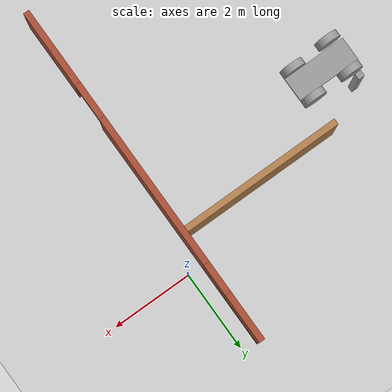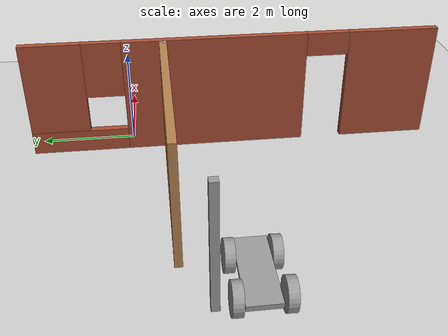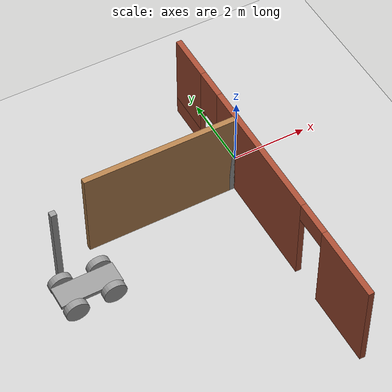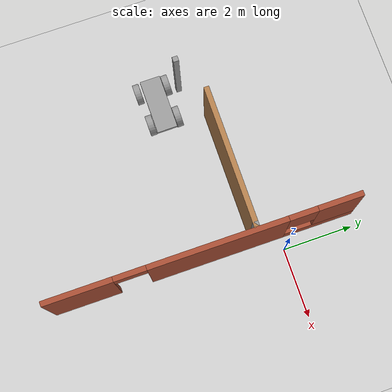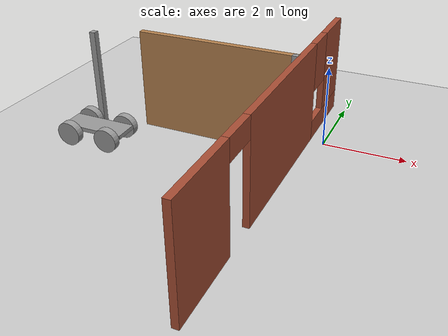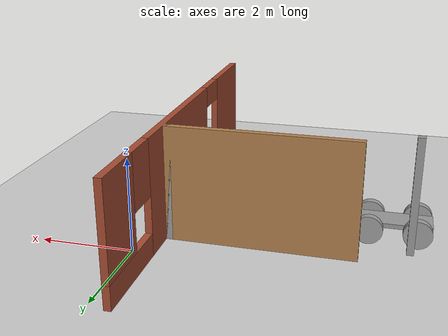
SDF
<sdf version="1.6">
 <world name="default">
  <model name="ground_plane">
   <static>1</static>
   <link name="link">
    <collision name="collision">
     <geometry><plane><normal>0 0 1</normal><size>100 100</size></plane></geometry>
     <surface><friction><ode><mu>100</mu><mu2>50</mu2></ode></friction></surface>
    </collision>
    <visual name="visual">
     <cast_shadows>0</cast_shadows>
     <geometry><plane><normal>0 0 1</normal><size>100 100</size></plane></geometry>
     <material>
      <script><uri>file://media/materials/scripts/gazebo.material</uri><name>Gazebo/Grey</name></script>
     </material>
    </visual>
   </link>
  </model>
  <model name="Building">
   <link name="Wall_19">
    <pose>3.69833 -0.184696 0 0 -0 0</pose>
    <visual name="Wall_19_Visual">
     <pose>0 0 1.25 0 -0 0</pose>
     <geometry><box><size>4 0.15 2.5</size></box></geometry>
     <material>
      <script><uri>file://media/materials/scripts/gazebo.material</uri><name>Gazebo/Wood</name></script>
      <ambient>1 1 1 1</ambient>
      <shader type="pixel"/>
      <diffuse>1 1 1 1</diffuse>
      <specular>0.2 0.2 0.2 1</specular>
      <emissive>0 0 0 1</emissive>
     </material>
     <meta><layer>0</layer></meta>
    </visual>
    <collision name="Wall_19_Collision">
     <pose>0 0 1.25 0 -0 0</pose>
     <geometry><box><size>4 0.15 2.5</size></box></geometry>
     <surface>
      <friction>
       <ode><mu>1</mu><mu2>1</mu2><fdir1>0 0 0</fdir1><slip1>0</slip1><slip2>0</slip2></ode>
       <torsional>
        <coefficient>1</coefficient>
        <patch_radius>0</patch_radius>
        <surface_radius>0</surface_radius>
        <use_patch_radius>1</use_patch_radius>
        <ode><slip>0</slip></ode>
       </torsional>
      </friction>
      <bounce><restitution_coefficient>0</restitution_coefficient><threshold>1e+06</threshold></bounce>
      <contact>
       <collide_without_contact>0</collide_without_contact>
       <collide_without_contact_bitmask>1</collide_without_contact_bitmask>
       <collide_bitmask>1</collide_bitmask>
       <ode>
        <soft_cfm>0</soft_cfm>
        <soft_erp>0.2</soft_erp>
        <kp>1e+13</kp>
        <kd>1</kd>
        <max_vel>0.01</max_vel>
        <min_depth>0</min_depth>
       </ode>
       <bullet>
        <split_impulse>1</split_impulse>
        <split_impulse_penetration_threshold>-0.01</split_impulse_penetration_threshold>
        <soft_cfm>0</soft_cfm>
        <soft_erp>0.2</soft_erp>
        <kp>1e+13</kp>
        <kd>1</kd>
       </bullet>
      </contact>
     </surface>
    </collision>
   </link>
   <link name="Wall_2">
    <pose>5.76056 -1.65 0 0 -0 1.5708</pose>
    <visual name="Wall_2_Visual_0">
     <pose>-3.41528 0 1.25 0 -0 0</pose>
     <geometry><box><size>1.91943 0.15 2.5</size></box></geometry>
     <material>
      <script><uri>file://media/materials/scripts/gazebo.material</uri><name>Gazebo/Bricks</name></script>
      <ambient>1 1 1 1</ambient>
      <shader type="pixel"/>
      <diffuse>1 1 1 1</diffuse>
      <specular>0.2 0.2 0.2 1</specular>
      <emissive>0 0 0 1</emissive>
     </material>
     <meta><layer>0</layer></meta>
    </visual>
    <visual name="Wall_2_Visual_1">
     <pose>0.38347 0 1.25 0 -0 0</pose>
     <geometry><box><size>3.87808 0.15 2.5</size></box></geometry>
     <material>
      <script><uri>file://media/materials/scripts/gazebo.material</uri><name>Gazebo/Bricks</name></script>
      <ambient>1 1 1 1</ambient>
      <shader type="pixel"/>
      <diffuse>1 1 1 1</diffuse>
      <specular>0.2 0.2 0.2 1</specular>
      <emissive>0 0 0 1</emissive>
     </material>
     <meta><layer>0</layer></meta>
    </visual>
    <visual name="Wall_2_Visual_2">
     <pose>3.34875 0 0.25 0 -0 0</pose>
     <geometry><box><size>2.05249 0.15 0.5</size></box></geometry>
     <material>
      <script><uri>file://media/materials/scripts/gazebo.material</uri><name>Gazebo/Bricks</name></script>
      <ambient>1 1 1 1</ambient>
      <shader type="pixel"/>
      <diffuse>1 1 1 1</diffuse>
      <specular>0.2 0.2 0.2 1</specular>
      <emissive>0 0 0 1</emissive>
     </material>
     <meta><layer>0</layer></meta>
    </visual>
    <visual name="Wall_2_Visual_3">
     <pose>3.74875 0 1.5 0 -0 0</pose>
     <geometry><box><size>1.25249 0.15 2</size></box></geometry>
     <material>
      <script><uri>file://media/materials/scripts/gazebo.material</uri><name>Gazebo/Bricks</name></script>
      <ambient>1 1 1 1</ambient>
      <shader type="pixel"/>
      <diffuse>1 1 1 1</diffuse>
      <specular>0.2 0.2 0.2 1</specular>
      <emissive>0 0 0 1</emissive>
     </material>
     <meta><layer>0</layer></meta>
    </visual>
    <visual name="Wall_2_Visual_4">
     <pose>2.72251 0 1.9 0 -0 0</pose>
     <geometry><box><size>0.8 0.15 1.2</size></box></geometry>
     <material>
      <script><uri>file://media/materials/scripts/gazebo.material</uri><name>Gazebo/Bricks</name></script>
      <ambient>1 1 1 1</ambient>
      <shader type="pixel"/>
      <diffuse>1 1 1 1</diffuse>
      <specular>0.2 0.2 0.2 1</specular>
      <emissive>0 0 0 1</emissive>
     </material>
     <meta><layer>0</layer></meta>
    </visual>
    <visual name="Wall_2_Visual_5">
     <pose>-2.00557 0 2.25 0 -0 0</pose>
     <geometry><box><size>0.9 0.15 0.5</size></box></geometry>
     <material>
      <script><uri>file://media/materials/scripts/gazebo.material</uri><name>Gazebo/Bricks</name></script>
      <ambient>1 1 1 1</ambient>
      <shader type="pixel"/>
      <diffuse>1 1 1 1</diffuse>
      <specular>0.2 0.2 0.2 1</specular>
      <emissive>0 0 0 1</emissive>
     </material>
     <meta><layer>0</layer></meta>
    </visual>
    <collision name="Wall_2_Collision_0">
     <pose>-3.41528 0 1.25 0 -0 0</pose>
     <geometry><box><size>1.91943 0.15 2.5</size></box></geometry>
     <surface>
      <friction>
       <ode><mu>1</mu><mu2>1</mu2><fdir1>0 0 0</fdir1><slip1>0</slip1><slip2>0</slip2></ode>
       <torsional>
        <coefficient>1</coefficient>
        <patch_radius>0</patch_radius>
        <surface_radius>0</surface_radius>
        <use_patch_radius>1</use_patch_radius>
        <ode><slip>0</slip></ode>
       </torsional>
      </friction>
      <bounce><restitution_coefficient>0</restitution_coefficient><threshold>1e+06</threshold></bounce>
      <contact>
       <collide_without_contact>0</collide_without_contact>
       <collide_without_contact_bitmask>1</collide_without_contact_bitmask>
       <collide_bitmask>1</collide_bitmask>
       <ode>
        <soft_cfm>0</soft_cfm>
        <soft_erp>0.2</soft_erp>
        <kp>1e+13</kp>
        <kd>1</kd>
        <max_vel>0.01</max_vel>
        <min_depth>0</min_depth>
       </ode>
       <bullet>
        <split_impulse>1</split_impulse>
        <split_impulse_penetration_threshold>-0.01</split_impulse_penetration_threshold>
        <soft_cfm>0</soft_cfm>
        <soft_erp>0.2</soft_erp>
        <kp>1e+13</kp>
        <kd>1</kd>
       </bullet>
      </contact>
     </surface>
    </collision>
    <collision name="Wall_2_Collision_1">
     <pose>0.38347 0 1.25 0 -0 0</pose>
     <geometry><box><size>3.87808 0.15 2.5</size></box></geometry>
     <surface>
      <friction>
       <ode><mu>1</mu><mu2>1</mu2><fdir1>0 0 0</fdir1><slip1>0</slip1><slip2>0</slip2></ode>
       <torsional>
        <coefficient>1</coefficient>
        <patch_radius>0</patch_radius>
        <surface_radius>0</surface_radius>
        <use_patch_radius>1</use_patch_radius>
        <ode><slip>0</slip></ode>
       </torsional>
      </friction>
      <bounce><restitution_coefficient>0</restitution_coefficient><threshold>1e+06</threshold></bounce>
      <contact>
       <collide_without_contact>0</collide_without_contact>
       <collide_without_contact_bitmask>1</collide_without_contact_bitmask>
       <collide_bitmask>1</collide_bitmask>
       <ode>
        <soft_cfm>0</soft_cfm>
        <soft_erp>0.2</soft_erp>
        <kp>1e+13</kp>
        <kd>1</kd>
        <max_vel>0.01</max_vel>
        <min_depth>0</min_depth>
       </ode>
       <bullet>
        <split_impulse>1</split_impulse>
        <split_impulse_penetration_threshold>-0.01</split_impulse_penetration_threshold>
        <soft_cfm>0</soft_cfm>
        <soft_erp>0.2</soft_erp>
        <kp>1e+13</kp>
        <kd>1</kd>
       </bullet>
      </contact>
     </surface>
    </collision>
    <collision name="Wall_2_Collision_2">
     <pose>3.34875 0 0.25 0 -0 0</pose>
     <geometry><box><size>2.05249 0.15 0.5</size></box></geometry>
     <surface>
      <friction>
       <ode><mu>1</mu><mu2>1</mu2><fdir1>0 0 0</fdir1><slip1>0</slip1><slip2>0</slip2></ode>
       <torsional>
        <coefficient>1</coefficient>
        <patch_radius>0</patch_radius>
        <surface_radius>0</surface_radius>
        <use_patch_radius>1</use_patch_radius>
        <ode><slip>0</slip></ode>
       </torsional>
      </friction>
      <bounce><restitution_coefficient>0</restitution_coefficient><threshold>1e+06</threshold></bounce>
      <contact>
       <collide_without_contact>0</collide_without_contact>
       <collide_without_contact_bitmask>1</collide_without_contact_bitmask>
       <collide_bitmask>1</collide_bitmask>
       <ode>
        <soft_cfm>0</soft_cfm>
        <soft_erp>0.2</soft_erp>
        <kp>1e+13</kp>
        <kd>1</kd>
        <max_vel>0.01</max_vel>
        <min_depth>0</min_depth>
       </ode>
       <bullet>
        <split_impulse>1</split_impulse>
        <split_impulse_penetration_threshold>-0.01</split_impulse_penetration_threshold>
        <soft_cfm>0</soft_cfm>
        <soft_erp>0.2</soft_erp>
        <kp>1e+13</kp>
        <kd>1</kd>
       </bullet>
      </contact>
     </surface>
    </collision>
    <collision name="Wall_2_Collision_3">
     <pose>3.74875 0 1.5 0 -0 0</pose>
     <geometry><box><size>1.25249 0.15 2</size></box></geometry>
     <surface>
      <friction>
       <ode><mu>1</mu><mu2>1</mu2><fdir1>0 0 0</fdir1><slip1>0</slip1><slip2>0</slip2></ode>
       <torsional>
        <coefficient>1</coefficient>
        <patch_radius>0</patch_radius>
        <surface_radius>0</surface_radius>
        <use_patch_radius>1</use_patch_radius>
        <ode><slip>0</slip></ode>
       </torsional>
      </friction>
      <bounce><restitution_coefficient>0</restitution_coefficient><threshold>1e+06</threshold></bounce>
      <contact>
       <collide_without_contact>0</collide_without_contact>
       <collide_without_contact_bitmask>1</collide_without_contact_bitmask>
       <collide_bitmask>1</collide_bitmask>
       <ode>
        <soft_cfm>0</soft_cfm>
        <soft_erp>0.2</soft_erp>
        <kp>1e+13</kp>
        <kd>1</kd>
        <max_vel>0.01</max_vel>
        <min_depth>0</min_depth>
       </ode>
       <bullet>
        <split_impulse>1</split_impulse>
        <split_impulse_penetration_threshold>-0.01</split_impulse_penetration_threshold>
        <soft_cfm>0</soft_cfm>
        <soft_erp>0.2</soft_erp>
        <kp>1e+13</kp>
        <kd>1</kd>
       </bullet>
      </contact>
     </surface>
    </collision>
    <collision name="Wall_2_Collision_4">
     <pose>2.72251 0 1.9 0 -0 0</pose>
     <geometry><box><size>0.8 0.15 1.2</size></box></geometry>
     <surface>
      <friction>
       <ode><mu>1</mu><mu2>1</mu2><fdir1>0 0 0</fdir1><slip1>0</slip1><slip2>0</slip2></ode>
       <torsional>
        <coefficient>1</coefficient>
        <patch_radius>0</patch_radius>
        <surface_radius>0</surface_radius>
        <use_patch_radius>1</use_patch_radius>
        <ode><slip>0</slip></ode>
       </torsional>
      </friction>
      <bounce><restitution_coefficient>0</restitution_coefficient><threshold>1e+06</threshold></bounce>
      <contact>
       <collide_without_contact>0</collide_without_contact>
       <collide_without_contact_bitmask>1</collide_without_contact_bitmask>
       <collide_bitmask>1</collide_bitmask>
       <ode>
        <soft_cfm>0</soft_cfm>
        <soft_erp>0.2</soft_erp>
        <kp>1e+13</kp>
        <kd>1</kd>
        <max_vel>0.01</max_vel>
        <min_depth>0</min_depth>
       </ode>
       <bullet>
        <split_impulse>1</split_impulse>
        <split_impulse_penetration_threshold>-0.01</split_impulse_penetration_threshold>
        <soft_cfm>0</soft_cfm>
        <soft_erp>0.2</soft_erp>
        <kp>1e+13</kp>
        <kd>1</kd>
       </bullet>
      </contact>
     </surface>
    </collision>
    <collision name="Wall_2_Collision_5">
     <pose>-2.00557 0 2.25 0 -0 0</pose>
     <geometry><box><size>0.9 0.15 0.5</size></box></geometry>
     <surface>
      <friction>
       <ode><mu>1</mu><mu2>1</mu2><fdir1>0 0 0</fdir1><slip1>0</slip1><slip2>0</slip2></ode>
       <torsional>
        <coefficient>1</coefficient>
        <patch_radius>0</patch_radius>
        <surface_radius>0</surface_radius>
        <use_patch_radius>1</use_patch_radius>
        <ode><slip>0</slip></ode>
       </torsional>
      </friction>
      <bounce><restitution_coefficient>0</restitution_coefficient><threshold>1e+06</threshold></bounce>
      <contact>
       <collide_without_contact>0</collide_without_contact>
       <collide_without_contact_bitmask>1</collide_without_contact_bitmask>
       <collide_bitmask>1</collide_bitmask>
       <ode>
        <soft_cfm>0</soft_cfm>
        <soft_erp>0.2</soft_erp>
        <kp>1e+13</kp>
        <kd>1</kd>
        <max_vel>0.01</max_vel>
        <min_depth>0</min_depth>
       </ode>
       <bullet>
        <split_impulse>1</split_impulse>
        <split_impulse_penetration_threshold>-0.01</split_impulse_penetration_threshold>
        <soft_cfm>0</soft_cfm>
        <soft_erp>0.2</soft_erp>
        <kp>1e+13</kp>
        <kd>1</kd>
       </bullet>
      </contact>
     </surface>
    </collision>
   </link>
   <link name="Wall_20">
    <pose>5.62333 -0.184696 0 0 -0 0</pose>
    <visual name="Wall_20_Visual">
     <pose>0 0 1.25 0 -0 0</pose>
     <geometry><box><size>0.15 0.15 2.5</size></box></geometry>
     <material>
      <script><uri>file://media/materials/scripts/gazebo.material</uri><name>Gazebo/Grey</name></script>
      <ambient>1 1 1 1</ambient>
      <shader type="pixel"/>
      <diffuse>0.7 0.7 0.7 1</diffuse>
      <specular>0.01 0.01 0.01 1</specular>
      <emissive>0 0 0 1</emissive>
     </material>
     <meta><layer>0</layer></meta>
    </visual>
    <collision name="Wall_20_Collision">
     <pose>0 0 1.25 0 -0 0</pose>
     <geometry><box><size>0.15 0.15 2.5</size></box></geometry>
     <surface>
      <friction>
       <ode><mu>1</mu><mu2>1</mu2><fdir1>0 0 0</fdir1><slip1>0</slip1><slip2>0</slip2></ode>
       <torsional>
        <coefficient>1</coefficient>
        <patch_radius>0</patch_radius>
        <surface_radius>0</surface_radius>
        <use_patch_radius>1</use_patch_radius>
        <ode><slip>0</slip></ode>
       </torsional>
      </friction>
      <bounce><restitution_coefficient>0</restitution_coefficient><threshold>1e+06</threshold></bounce>
      <contact>
       <collide_without_contact>0</collide_without_contact>
       <collide_without_contact_bitmask>1</collide_without_contact_bitmask>
       <collide_bitmask>1</collide_bitmask>
       <ode>
        <soft_cfm>0</soft_cfm>
        <soft_erp>0.2</soft_erp>
        <kp>1e+13</kp>
        <kd>1</kd>
        <max_vel>0.01</max_vel>
        <min_depth>0</min_depth>
       </ode>
       <bullet>
        <split_impulse>1</split_impulse>
        <split_impulse_penetration_threshold>-0.01</split_impulse_penetration_threshold>
        <soft_cfm>0</soft_cfm>
        <soft_erp>0.2</soft_erp>
        <kp>1e+13</kp>
        <kd>1</kd>
       </bullet>
      </contact>
     </surface>
    </collision>
   </link>
   <link name="Wall_35">
    <pose>0.698568 -0.70703 0 0 -0 0</pose>
    <visual name="Wall_35_Visual">
     <pose>0 0 1.25 0 -0 0</pose>
     <geometry><box><size>0.15 0.15 2.5</size></box></geometry>
     <material>
      <script><uri>file://media/materials/scripts/gazebo.material</uri><name>Gazebo/Grey</name></script>
      <ambient>1 1 1 1</ambient>
      <shader type="pixel"/>
      <diffuse>0.7 0.7 0.7 1</diffuse>
      <specular>0.01 0.01 0.01 1</specular>
      <emissive>0 0 0 1</emissive>
     </material>
     <meta><layer>0</layer></meta>
    </visual>
    <collision name="Wall_35_Collision">
     <pose>0 0 1.25 0 -0 0</pose>
     <geometry><box><size>0.15 0.15 2.5</size></box></geometry>
     <surface>
      <friction>
       <ode><mu>1</mu><mu2>1</mu2><fdir1>0 0 0</fdir1><slip1>0</slip1><slip2>0</slip2></ode>
       <torsional>
        <coefficient>1</coefficient>
        <patch_radius>0</patch_radius>
        <surface_radius>0</surface_radius>
        <use_patch_radius>1</use_patch_radius>
        <ode><slip>0</slip></ode>
       </torsional>
      </friction>
      <bounce><restitution_coefficient>0</restitution_coefficient><threshold>1e+06</threshold></bounce>
      <contact>
       <collide_without_contact>0</collide_without_contact>
       <collide_without_contact_bitmask>1</collide_without_contact_bitmask>
       <collide_bitmask>1</collide_bitmask>
       <ode>
        <soft_cfm>0</soft_cfm>
        <soft_erp>0.2</soft_erp>
        <kp>1e+13</kp>
        <kd>1</kd>
        <max_vel>0.01</max_vel>
        <min_depth>0</min_depth>
       </ode>
       <bullet>
        <split_impulse>1</split_impulse>
        <split_impulse_penetration_threshold>-0.01</split_impulse_penetration_threshold>
        <soft_cfm>0</soft_cfm>
        <soft_erp>0.2</soft_erp>
        <kp>1e+13</kp>
        <kd>1</kd>
       </bullet>
      </contact>
     </surface>
    </collision>
   </link>
   <static>1</static>
   <pose>-6.1852 -0.576906 0 0 -0 0</pose>
  </model>
  <model name="WheelRobot">
   <link name="link_0">
    <pose>-0 0.009991 0.05001 0 -0 0</pose>
    <inertial>
     <mass>1</mass>
     <inertia>
      <ixx>0.166667</ixx>
      <ixy>0</ixy>
      <ixz>0</ixz>
      <iyy>0.166667</iyy>
      <iyz>0</iyz>
      <izz>0.166667</izz>
     </inertia>
    </inertial>
    <visual name="visual">
     <geometry><box><size>1.6 0.6 0.1</size></box></geometry>
     <material>
      <lighting>1</lighting>
      <script><uri>file://media/materials/scripts/gazebo.material</uri><name>Gazebo/Grey</name></script>
      <shader type="pixel"><normal_map>__default__</normal_map></shader>
      <ambient>0.3 0.3 0.3 1</ambient>
      <diffuse>0.7 0.7 0.7 1</diffuse>
      <specular>0.01 0.01 0.01 1</specular>
      <emissive>0 0 0 1</emissive>
     </material>
    </visual>
    <collision name="collision">
     <geometry><box><size>1.6 0.6 0.1</size></box></geometry>
     <surface>
      <friction>
       <ode><mu>1</mu><mu2>1</mu2><fdir1>0 0 0</fdir1><slip1>0</slip1><slip2>0</slip2></ode>
       <torsional>
        <coefficient>1</coefficient>
        <patch_radius>0</patch_radius>
        <surface_radius>0</surface_radius>
        <use_patch_radius>1</use_patch_radius>
        <ode><slip>0</slip></ode>
       </torsional>
      </friction>
      <bounce><restitution_coefficient>0</restitution_coefficient><threshold>1e+06</threshold></bounce>
      <contact>
       <collide_without_contact>0</collide_without_contact>
       <collide_without_contact_bitmask>1</collide_without_contact_bitmask>
       <collide_bitmask>1</collide_bitmask>
       <ode>
        <soft_cfm>0</soft_cfm>
        <soft_erp>0.2</soft_erp>
        <kp>1e+13</kp>
        <kd>1</kd>
        <max_vel>0.01</max_vel>
        <min_depth>0</min_depth>
       </ode>
       <bullet>
        <split_impulse>1</split_impulse>
        <split_impulse_penetration_threshold>-0.01</split_impulse_penetration_threshold>
        <soft_cfm>0</soft_cfm>
        <soft_erp>0.2</soft_erp>
        <kp>1e+13</kp>
        <kd>1</kd>
       </bullet>
      </contact>
     </surface>
    </collision>
   </link>
   <link name="link_1">
    <pose>-0.5 -0.442498 -0.012502 -1.52875 0 0</pose>
    <inertial>
     <mass>1</mass>
     <inertia><ixx>0.145833</ixx><ixy>0</ixy><ixz>0</ixz><iyy>0.145833</iyy><iyz>0</iyz><izz>0.125</izz></inertia>
    </inertial>
    <visual name="visual">
     <geometry><cylinder><radius>0.3</radius><length>0.18</length></cylinder></geometry>
     <material>
      <lighting>1</lighting>
      <script><uri>file://media/materials/scripts/gazebo.material</uri><name>Gazebo/Grey</name></script>
      <shader type="pixel"><normal_map>__default__</normal_map></shader>
      <ambient>0.3 0.3 0.3 1</ambient>
      <diffuse>0.7 0.7 0.7 1</diffuse>
      <specular>0.01 0.01 0.01 1</specular>
      <emissive>0 0 0 1</emissive>
     </material>
    </visual>
    <collision name="collision">
     <geometry><cylinder><radius>0.3</radius><length>0.18</length></cylinder></geometry>
     <surface>
      <friction>
       <ode><mu>1</mu><mu2>1</mu2><fdir1>0 0 0</fdir1><slip1>0</slip1><slip2>0</slip2></ode>
       <torsional>
        <coefficient>1</coefficient>
        <patch_radius>0</patch_radius>
        <surface_radius>0</surface_radius>
        <use_patch_radius>1</use_patch_radius>
        <ode><slip>0</slip></ode>
       </torsional>
      </friction>
      <bounce><restitution_coefficient>0</restitution_coefficient><threshold>1e+06</threshold></bounce>
      <contact>
       <collide_without_contact>0</collide_without_contact>
       <collide_without_contact_bitmask>1</collide_without_contact_bitmask>
       <collide_bitmask>1</collide_bitmask>
       <ode>
        <soft_cfm>0</soft_cfm>
        <soft_erp>0.2</soft_erp>
        <kp>1e+13</kp>
        <kd>1</kd>
        <max_vel>0.01</max_vel>
        <min_depth>0</min_depth>
       </ode>
       <bullet>
        <split_impulse>1</split_impulse>
        <split_impulse_penetration_threshold>-0.01</split_impulse_penetration_threshold>
        <soft_cfm>0</soft_cfm>
        <soft_erp>0.2</soft_erp>
        <kp>1e+13</kp>
        <kd>1</kd>
       </bullet>
      </contact>
     </surface>
    </collision>
   </link>
   <link name="link_1_clone">
    <pose>-0.5 0.412522 -0.012502 -1.52875 0 0</pose>
    <inertial>
     <mass>1</mass>
     <inertia><ixx>0.145833</ixx><ixy>0</ixy><ixz>0</ixz><iyy>0.145833</iyy><iyz>0</iyz><izz>0.125</izz></inertia>
    </inertial>
    <visual name="visual">
     <geometry><cylinder><radius>0.3</radius><length>0.18</length></cylinder></geometry>
     <material>
      <lighting>1</lighting>
      <script><uri>file://media/materials/scripts/gazebo.material</uri><name>Gazebo/Grey</name></script>
      <shader type="pixel"><normal_map>__default__</normal_map></shader>
      <ambient>0.3 0.3 0.3 1</ambient>
      <diffuse>0.7 0.7 0.7 1</diffuse>
      <specular>0.01 0.01 0.01 1</specular>
      <emissive>0 0 0 1</emissive>
     </material>
    </visual>
    <collision name="collision">
     <geometry><cylinder><radius>0.3</radius><length>0.18</length></cylinder></geometry>
     <surface>
      <friction>
       <ode><mu>1</mu><mu2>1</mu2><fdir1>0 0 0</fdir1><slip1>0</slip1><slip2>0</slip2></ode>
       <torsional>
        <coefficient>1</coefficient>
        <patch_radius>0</patch_radius>
        <surface_radius>0</surface_radius>
        <use_patch_radius>1</use_patch_radius>
        <ode><slip>0</slip></ode>
       </torsional>
      </friction>
      <bounce><restitution_coefficient>0</restitution_coefficient><threshold>1e+06</threshold></bounce>
      <contact>
       <collide_without_contact>0</collide_without_contact>
       <collide_without_contact_bitmask>1</collide_without_contact_bitmask>
       <collide_bitmask>1</collide_bitmask>
       <ode>
        <soft_cfm>0</soft_cfm>
        <soft_erp>0.2</soft_erp>
        <kp>1e+13</kp>
        <kd>1</kd>
        <max_vel>0.01</max_vel>
        <min_depth>0</min_depth>
       </ode>
       <bullet>
        <split_impulse>1</split_impulse>
        <split_impulse_penetration_threshold>-0.01</split_impulse_penetration_threshold>
        <soft_cfm>0</soft_cfm>
        <soft_erp>0.2</soft_erp>
        <kp>1e+13</kp>
        <kd>1</kd>
       </bullet>
      </contact>
     </surface>
    </collision>
   </link>
   <link name="link_1_clone_0">
    <pose>0.5 -0.392539 -0.012502 -1.52875 0 0</pose>
    <inertial>
     <mass>1</mass>
     <inertia><ixx>0.145833</ixx><ixy>0</ixy><ixz>0</ixz><iyy>0.145833</iyy><iyz>0</iyz><izz>0.125</izz></inertia>
    </inertial>
    <visual name="visual">
     <geometry><cylinder><radius>0.3</radius><length>0.18</length></cylinder></geometry>
     <material>
      <lighting>1</lighting>
      <script><uri>file://media/materials/scripts/gazebo.material</uri><name>Gazebo/Grey</name></script>
      <shader type="pixel"><normal_map>__default__</normal_map></shader>
      <ambient>0.3 0.3 0.3 1</ambient>
      <diffuse>0.7 0.7 0.7 1</diffuse>
      <specular>0.01 0.01 0.01 1</specular>
      <emissive>0 0 0 1</emissive>
     </material>
    </visual>
    <collision name="collision">
     <geometry><cylinder><radius>0.3</radius><length>0.18</length></cylinder></geometry>
     <surface>
      <friction>
       <ode><mu>1</mu><mu2>1</mu2><fdir1>0 0 0</fdir1><slip1>0</slip1><slip2>0</slip2></ode>
       <torsional>
        <coefficient>1</coefficient>
        <patch_radius>0</patch_radius>
        <surface_radius>0</surface_radius>
        <use_patch_radius>1</use_patch_radius>
        <ode><slip>0</slip></ode>
       </torsional>
      </friction>
      <bounce><restitution_coefficient>0</restitution_coefficient><threshold>1e+06</threshold></bounce>
      <contact>
       <collide_without_contact>0</collide_without_contact>
       <collide_without_contact_bitmask>1</collide_without_contact_bitmask>
       <collide_bitmask>1</collide_bitmask>
       <ode>
        <soft_cfm>0</soft_cfm>
        <soft_erp>0.2</soft_erp>
        <kp>1e+13</kp>
        <kd>1</kd>
        <max_vel>0.01</max_vel>
        <min_depth>0</min_depth>
       </ode>
       <bullet>
        <split_impulse>1</split_impulse>
        <split_impulse_penetration_threshold>-0.01</split_impulse_penetration_threshold>
        <soft_cfm>0</soft_cfm>
        <soft_erp>0.2</soft_erp>
        <kp>1e+13</kp>
        <kd>1</kd>
       </bullet>
      </contact>
     </surface>
    </collision>
   </link>
   <link name="link_1_clone_1">
    <pose>0.5 0.412522 -0.012502 -1.52875 0 0</pose>
    <inertial>
     <mass>1</mass>
     <inertia><ixx>0.145833</ixx><ixy>0</ixy><ixz>0</ixz><iyy>0.145833</iyy><iyz>0</iyz><izz>0.125</izz></inertia>
    </inertial>
    <visual name="visual">
     <geometry><cylinder><radius>0.3</radius><length>0.18</length></cylinder></geometry>
     <material>
      <lighting>1</lighting>
      <script><uri>file://media/materials/scripts/gazebo.material</uri><name>Gazebo/Grey</name></script>
      <shader type="pixel"><normal_map>__default__</normal_map></shader>
      <ambient>0.3 0.3 0.3 1</ambient>
      <diffuse>0.7 0.7 0.7 1</diffuse>
      <specular>0.01 0.01 0.01 1</specular>
      <emissive>0 0 0 1</emissive>
     </material>
    </visual>
    <collision name="collision">
     <geometry><cylinder><radius>0.3</radius><length>0.18</length></cylinder></geometry>
     <surface>
      <friction>
       <ode><mu>1</mu><mu2>1</mu2><fdir1>0 0 0</fdir1><slip1>0</slip1><slip2>0</slip2></ode>
       <torsional>
        <coefficient>1</coefficient>
        <patch_radius>0</patch_radius>
        <surface_radius>0</surface_radius>
        <use_patch_radius>1</use_patch_radius>
        <ode><slip>0</slip></ode>
       </torsional>
      </friction>
      <bounce><restitution_coefficient>0</restitution_coefficient><threshold>1e+06</threshold></bounce>
      <contact>
       <collide_without_contact>0</collide_without_contact>
       <collide_without_contact_bitmask>1</collide_without_contact_bitmask>
       <collide_bitmask>1</collide_bitmask>
       <ode>
        <soft_cfm>0</soft_cfm>
        <soft_erp>0.2</soft_erp>
        <kp>1e+13</kp>
        <kd>1</kd>
        <max_vel>0.01</max_vel>
        <min_depth>0</min_depth>
       </ode>
       <bullet>
        <split_impulse>1</split_impulse>
        <split_impulse_penetration_threshold>-0.01</split_impulse_penetration_threshold>
        <soft_cfm>0</soft_cfm>
        <soft_erp>0.2</soft_erp>
        <kp>1e+13</kp>
        <kd>1</kd>
       </bullet>
      </contact>
     </surface>
    </collision>
   </link>
   <joint name="link_0_JOINT_0" type="revolute">
    <parent>link_0</parent>
    <child>link_1</child>
    <axis>
     <xyz>0 0 1</xyz>
     <use_parent_model_frame>0</use_parent_model_frame>
     <limit>
      <lower>-1.79769e+308</lower>
      <upper>1.79769e+308</upper>
      <effort>-1</effort>
      <velocity>-1</velocity>
     </limit>
     <dynamics>
      <spring_reference>0</spring_reference>
      <spring_stiffness>0</spring_stiffness>
      <damping>0</damping>
     </dynamics>
    </axis>
    <physics>
     <ode><limit><cfm>0</cfm><erp>0.2</erp></limit><suspension><cfm>0</cfm><erp>0.2</erp></suspension></ode>
    </physics>
   </joint>
   <joint name="link_0_JOINT_1" type="revolute">
    <parent>link_0</parent>
    <child>link_1_clone</child>
    <axis>
     <xyz>0 0 1</xyz>
     <use_parent_model_frame>0</use_parent_model_frame>
     <limit>
      <lower>-1.79769e+308</lower>
      <upper>1.79769e+308</upper>
      <effort>-1</effort>
      <velocity>-1</velocity>
     </limit>
     <dynamics>
      <spring_reference>0</spring_reference>
      <spring_stiffness>0</spring_stiffness>
      <damping>0</damping>
     </dynamics>
    </axis>
    <physics>
     <ode><limit><cfm>0</cfm><erp>0.2</erp></limit><suspension><cfm>0</cfm><erp>0.2</erp></suspension></ode>
    </physics>
   </joint>
   <joint name="link_0_JOINT_2" type="revolute">
    <parent>link_0</parent>
    <child>link_1_clone_1</child>
    <axis>
     <xyz>0 0 1</xyz>
     <use_parent_model_frame>0</use_parent_model_frame>
     <limit>
      <lower>-1.79769e+308</lower>
      <upper>1.79769e+308</upper>
      <effort>-1</effort>
      <velocity>-1</velocity>
     </limit>
     <dynamics>
      <spring_reference>0</spring_reference>
      <spring_stiffness>0</spring_stiffness>
      <damping>0</damping>
     </dynamics>
    </axis>
    <physics>
     <ode><limit><cfm>0</cfm><erp>0.2</erp></limit><suspension><cfm>0</cfm><erp>0.2</erp></suspension></ode>
    </physics>
   </joint>
   <joint name="link_0_JOINT_3" type="revolute">
    <parent>link_0</parent>
    <child>link_1_clone_0</child>
    <axis>
     <xyz>0 0 1</xyz>
     <use_parent_model_frame>0</use_parent_model_frame>
     <limit>
      <lower>-1.79769e+308</lower>
      <upper>1.79769e+308</upper>
      <effort>-1</effort>
      <velocity>-1</velocity>
     </limit>
     <dynamics>
      <spring_reference>0</spring_reference>
      <spring_stiffness>0</spring_stiffness>
      <damping>0</damping>
     </dynamics>
    </axis>
    <physics>
     <ode><limit><cfm>0</cfm><erp>0.2</erp></limit><suspension><cfm>0</cfm><erp>0.2</erp></suspension></ode>
    </physics>
   </joint>
   <static>0</static>
   <pose>-5.1149 -2.01384 0.316018 -4e-06 -0 0.003746</pose>
  </model>
 </world>
</sdf>
